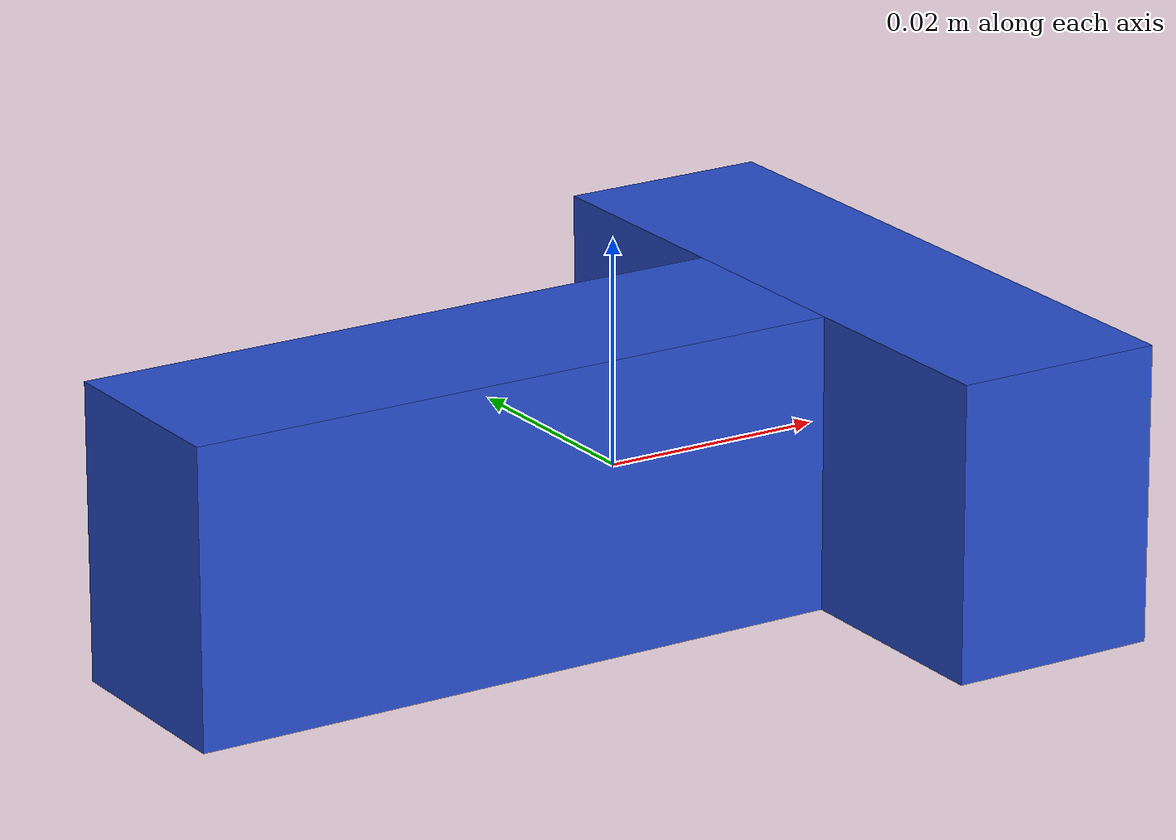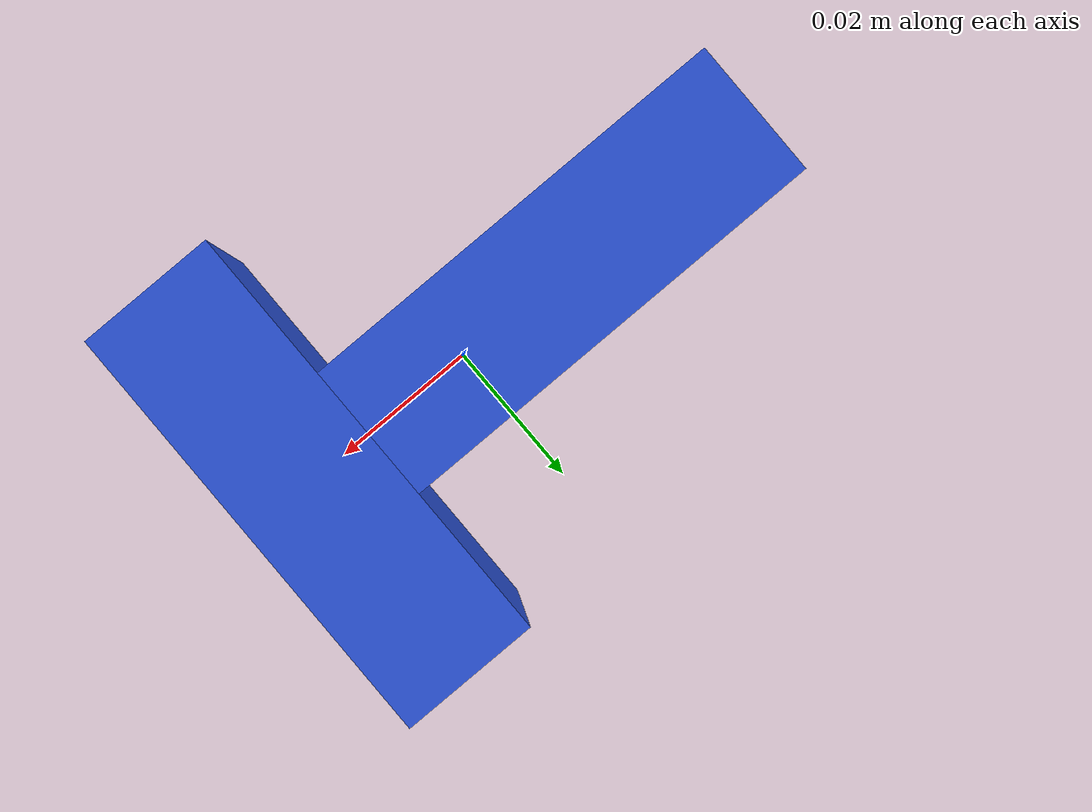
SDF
<?xml version='1.0'?>
<sdf version='1.6'>
  <model name='T_shape_small'>
    <link name='link'>
      <inertial>
        <mass>0.0844</mass>
        <inertia>
          <ixx>0.000071</ixx> <ixy>0</ixy> <ixz>0</ixz>
          <iyy>0.000071</iyy> <iyz>0</iyz>
          <izz>0.000142</izz>
        </inertia>
      </inertial>

      <visual name='stem_vis'>
        <pose>-0.015000 0.000000 0.000000 0 0 0</pose>
        <geometry><box><size>0.060000 0.018750 0.026250</size></box></geometry>
        <material><script><name>Gazebo/Blue</name></script></material>
      </visual>
      <collision name='stem_col'>
        <pose>-0.015000 0.000000 0.000000 0 0 0</pose>
        <geometry><box><size>0.060000 0.018750 0.026250</size></box></geometry>
        <surface><friction><ode><mu>100.0</mu><mu2>100.0</mu2></ode></friction></surface>
      </collision>

      <visual name='top_vis'>
        <pose>0.024375 0.000000 0.000000 0 0 0</pose>
        <geometry><box><size>0.018750 0.060000 0.026250</size></box></geometry>
        <material><script><name>Gazebo/Blue</name></script></material>
      </visual>
      <collision name='top_col'>
        <pose>0.024375 0.000000 0.000000 0 0 0</pose>
        <geometry><box><size>0.018750 0.060000 0.026250</size></box></geometry>
        <surface><friction><ode><mu>100.0</mu><mu2>100.0</mu2></ode></friction></surface>
      </collision>
    </link>
  </model>
</sdf>
